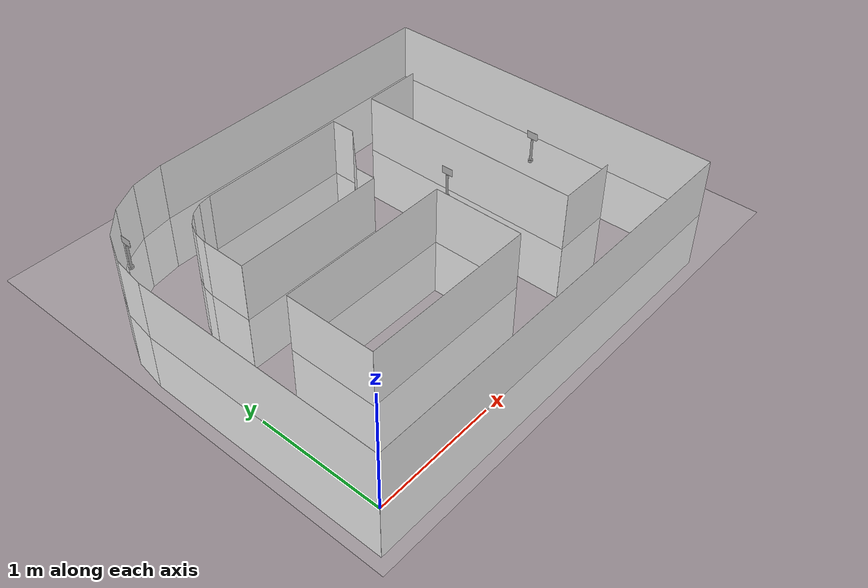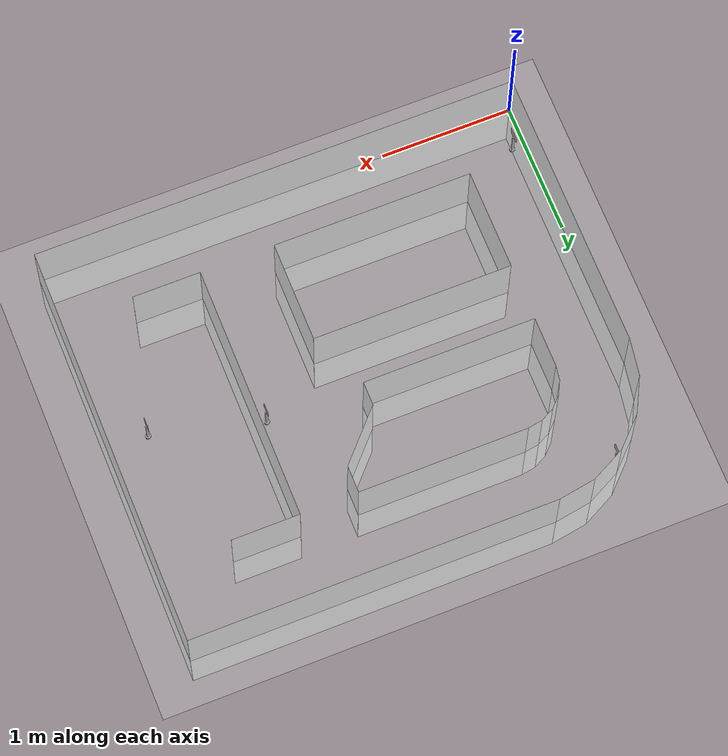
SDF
<sdf version="1.6">
 <world name="default">
  <light name="sun" type="directional">
   <pose>0 0 10 0 -0 0</pose>
   <diffuse>0.8 0.8 0.8 1</diffuse>
   <specular>0.1 0.1 0.1 1</specular>
   <attenuation>
    <range>1000</range>
    <constant>0.9</constant>
    <linear>0.01</linear>
    <quadratic>0.001</quadratic>
   </attenuation>
   <direction>-0.5 0.5 -1</direction>
  </light>
  <model name="ground_plane">
   <static>1</static>
   <link name="link">
    <collision name="collision">
     <geometry><plane><normal>0 0 1</normal><size>100 100</size></plane></geometry>
     <surface><friction><ode><mu>100</mu><mu2>50</mu2></ode></friction></surface>
    </collision>
    <visual name="visual">
     <cast_shadows>0</cast_shadows>
     <geometry><plane><normal>0 0 1</normal><size>100 100</size></plane></geometry>
     <material>
      <script><uri>file://media/materials/scripts/gazebo.material</uri><name>Gazebo/Grey</name></script>
     </material>
    </visual>
   </link>
  </model>
  <model name="wall_0">
   <static>1</static>
   <link name="link">
    <collision name="collision"><geometry><box><size>2.13360426721 0.001 1</size></box></geometry></collision>
    <visual name="visual">
     <geometry><box><size>2.13360426721 0.001 1</size></box></geometry>
     <material>
      <script><name>Gazebo/White</name><uri>file://media/materials/scripts/gazebo.material</uri></script>
     </material>
    </visual>
   </link>
   <pose>0.0 1.0668021336 0 0 0 1.57079632679</pose>
  </model>
  <model name="wall_1">
   <static>1</static>
   <link name="link">
    <collision name="collision"><geometry><box><size>0.286087921841 0.001 1</size></box></geometry></collision>
    <visual name="visual">
     <geometry><box><size>0.286087921841 0.001 1</size></box></geometry>
     <material>
      <script><name>Gazebo/White</name><uri>file://media/materials/scripts/gazebo.material</uri></script>
     </material>
    </visual>
   </link>
   <pose>0.0223770055039 2.2748871196 0 0 0 1.41371669412</pose>
  </model>
  <model name="wall_2">
   <static>1</static>
   <link name="link">
    <collision name="collision"><geometry><box><size>0.286087921841 0.001 1</size></box></geometry></collision>
    <visual name="visual">
     <geometry><box><size>0.286087921841 0.001 1</size></box></geometry>
     <material>
      <script><name>Gazebo/White</name><uri>file://media/materials/scripts/gazebo.material</uri></script>
     </material>
    </visual>
   </link>
   <pose>0.109694610311 2.54362307442 0 0 0 1.09955742876</pose>
  </model>
  <model name="wall_3">
   <static>1</static>
   <link name="link">
    <collision name="collision"><geometry><box><size>0.286087921841 0.001 1</size></box></geometry></collision>
    <visual name="visual">
     <geometry><box><size>0.286087921841 0.001 1</size></box></geometry>
     <material>
      <script><name>Gazebo/White</name><uri>file://media/materials/scripts/gazebo.material</uri></script>
     </material>
    </visual>
   </link>
   <pose>0.275782564389 2.77222353162 0 0 0 0.785398163397</pose>
  </model>
  <model name="wall_4">
   <static>1</static>
   <link name="link">
    <collision name="collision"><geometry><box><size>0.286087921841 0.001 1</size></box></geometry></collision>
    <visual name="visual">
     <geometry><box><size>0.286087921841 0.001 1</size></box></geometry>
     <material>
      <script><name>Gazebo/White</name><uri>file://media/materials/scripts/gazebo.material</uri></script>
     </material>
    </visual>
   </link>
   <pose>0.50438302159 2.9383114857 0 0 0 0.471238898038</pose>
  </model>
  <model name="wall_5">
   <static>1</static>
   <link name="link">
    <collision name="collision"><geometry><box><size>0.286087921841 0.001 1</size></box></geometry></collision>
    <visual name="visual">
     <geometry><box><size>0.286087921841 0.001 1</size></box></geometry>
     <material>
      <script><name>Gazebo/White</name><uri>file://media/materials/scripts/gazebo.material</uri></script>
     </material>
    </visual>
   </link>
   <pose>0.77311897641 3.02562909051 0 0 0 0.157079632679</pose>
  </model>
  <model name="wall_6">
   <static>1</static>
   <link name="link">
    <collision name="collision"><geometry><box><size>2.74320548641 0.001 1</size></box></geometry></collision>
    <visual name="visual">
     <geometry><box><size>2.74320548641 0.001 1</size></box></geometry>
     <material>
      <script><name>Gazebo/White</name><uri>file://media/materials/scripts/gazebo.material</uri></script>
     </material>
    </visual>
   </link>
   <pose>2.28600457201 3.04800609601 0 0 0 0.0</pose>
  </model>
  <model name="wall_7">
   <static>1</static>
   <link name="link">
    <collision name="collision"><geometry><box><size>3.04800609601 0.001 1</size></box></geometry></collision>
    <visual name="visual">
     <geometry><box><size>3.04800609601 0.001 1</size></box></geometry>
     <material>
      <script><name>Gazebo/White</name><uri>file://media/materials/scripts/gazebo.material</uri></script>
     </material>
    </visual>
   </link>
   <pose>3.65760731521 1.52400304801 0 0 0 -1.57079632679</pose>
  </model>
  <model name="wall_8">
   <static>1</static>
   <link name="link">
    <collision name="collision"><geometry><box><size>3.65760731521 0.001 1</size></box></geometry></collision>
    <visual name="visual">
     <geometry><box><size>3.65760731521 0.001 1</size></box></geometry>
     <material>
      <script><name>Gazebo/White</name><uri>file://media/materials/scripts/gazebo.material</uri></script>
     </material>
    </visual>
   </link>
   <pose>1.82880365761 0.0 0 0 0 3.14159265359</pose>
  </model>
  <model name="wall_9">
   <static>1</static>
   <link name="link">
    <collision name="collision"><geometry><box><size>0.762001524003 0.001 1</size></box></geometry></collision>
    <visual name="visual">
     <geometry><box><size>0.762001524003 0.001 1</size></box></geometry>
     <material>
      <script><name>Gazebo/White</name><uri>file://media/materials/scripts/gazebo.material</uri></script>
     </material>
    </visual>
   </link>
   <pose>0.558801117602 0.939801879604 0 0 0 1.57079632679</pose>
  </model>
  <model name="wall_10">
   <static>1</static>
   <link name="link">
    <collision name="collision"><geometry><box><size>1.49860299721 0.001 1</size></box></geometry></collision>
    <visual name="visual">
     <geometry><box><size>1.49860299721 0.001 1</size></box></geometry>
     <material>
      <script><name>Gazebo/White</name><uri>file://media/materials/scripts/gazebo.material</uri></script>
     </material>
    </visual>
   </link>
   <pose>1.30810261621 1.32080264161 0 0 0 0.0</pose>
  </model>
  <model name="wall_11">
   <static>1</static>
   <link name="link">
    <collision name="collision"><geometry><box><size>0.762001524003 0.001 1</size></box></geometry></collision>
    <visual name="visual">
     <geometry><box><size>0.762001524003 0.001 1</size></box></geometry>
     <material>
      <script><name>Gazebo/White</name><uri>file://media/materials/scripts/gazebo.material</uri></script>
     </material>
    </visual>
   </link>
   <pose>2.05740411481 0.939801879604 0 0 0 -1.57079632679</pose>
  </model>
  <model name="wall_12">
   <static>1</static>
   <link name="link">
    <collision name="collision"><geometry><box><size>1.49860299721 0.001 1</size></box></geometry></collision>
    <visual name="visual">
     <geometry><box><size>1.49860299721 0.001 1</size></box></geometry>
     <material>
      <script><name>Gazebo/White</name><uri>file://media/materials/scripts/gazebo.material</uri></script>
     </material>
    </visual>
   </link>
   <pose>1.30810261621 0.558801117602 0 0 0 3.14159265359</pose>
  </model>
  <model name="wall_13">
   <static>1</static>
   <link name="link">
    <collision name="collision"><geometry><box><size>0.381000762002 0.001 1</size></box></geometry></collision>
    <visual name="visual">
     <geometry><box><size>0.381000762002 0.001 1</size></box></geometry>
     <material>
      <script><name>Gazebo/White</name><uri>file://media/materials/scripts/gazebo.material</uri></script>
     </material>
    </visual>
   </link>
   <pose>0.558801117602 1.94310388621 0 0 0 1.57079632679</pose>
  </model>
  <model name="wall_14">
   <static>1</static>
   <link name="link">
    <collision name="collision"><geometry><box><size>0.111256414049 0.001 1</size></box></geometry></collision>
    <visual name="visual">
     <geometry><box><size>0.111256414049 0.001 1</size></box></geometry>
     <material>
      <script><name>Gazebo/White</name><uri>file://media/materials/scripts/gazebo.material</uri></script>
     </material>
    </visual>
   </link>
   <pose>0.567503286409 2.1885475987 0 0 0 1.41371669412</pose>
  </model>
  <model name="wall_15">
   <static>1</static>
   <link name="link">
    <collision name="collision"><geometry><box><size>0.111256414049 0.001 1</size></box></geometry></collision>
    <visual name="visual">
     <geometry><box><size>0.111256414049 0.001 1</size></box></geometry>
     <material>
      <script><name>Gazebo/White</name><uri>file://media/materials/scripts/gazebo.material</uri></script>
     </material>
    </visual>
   </link>
   <pose>0.601460132723 2.29305602557 0 0 0 1.09955742876</pose>
  </model>
  <model name="wall_16">
   <static>1</static>
   <link name="link">
    <collision name="collision"><geometry><box><size>0.111256414049 0.001 1</size></box></geometry></collision>
    <visual name="visual">
     <geometry><box><size>0.111256414049 0.001 1</size></box></geometry>
     <material>
      <script><name>Gazebo/White</name><uri>file://media/materials/scripts/gazebo.material</uri></script>
     </material>
    </visual>
   </link>
   <pose>0.666049892642 2.38195620337 0 0 0 0.785398163397</pose>
  </model>
  <model name="wall_17">
   <static>1</static>
   <link name="link">
    <collision name="collision"><geometry><box><size>0.111256414049 0.001 1</size></box></geometry></collision>
    <visual name="visual">
     <geometry><box><size>0.111256414049 0.001 1</size></box></geometry>
     <material>
      <script><name>Gazebo/White</name><uri>file://media/materials/scripts/gazebo.material</uri></script>
     </material>
    </visual>
   </link>
   <pose>0.754950070443 2.44654596329 0 0 0 0.471238898038</pose>
  </model>
  <model name="wall_18">
   <static>1</static>
   <link name="link">
    <collision name="collision"><geometry><box><size>0.111256414049 0.001 1</size></box></geometry></collision>
    <visual name="visual">
     <geometry><box><size>0.111256414049 0.001 1</size></box></geometry>
     <material>
      <script><name>Gazebo/White</name><uri>file://media/materials/scripts/gazebo.material</uri></script>
     </material>
    </visual>
   </link>
   <pose>0.859458497317 2.4805028096 0 0 0 0.157079632679</pose>
  </model>
  <model name="wall_19">
   <static>1</static>
   <link name="link">
    <collision name="collision"><geometry><box><size>1.27000254001 0.001 1</size></box></geometry></collision>
    <visual name="visual">
     <geometry><box><size>1.27000254001 0.001 1</size></box></geometry>
     <material>
      <script><name>Gazebo/White</name><uri>file://media/materials/scripts/gazebo.material</uri></script>
     </material>
    </visual>
   </link>
   <pose>1.54940309881 2.48920497841 0 0 0 0.0</pose>
  </model>
  <model name="wall_20">
   <static>1</static>
   <link name="link">
    <collision name="collision"><geometry><box><size>0.203200406401 0.001 1</size></box></geometry></collision>
    <visual name="visual">
     <geometry><box><size>0.203200406401 0.001 1</size></box></geometry>
     <material>
      <script><name>Gazebo/White</name><uri>file://media/materials/scripts/gazebo.material</uri></script>
     </material>
    </visual>
   </link>
   <pose>2.18440436881 2.38760477521 0 0 0 -1.57079632679</pose>
  </model>
  <model name="wall_21">
   <static>1</static>
   <link name="link">
    <collision name="collision"><geometry><box><size>0.485267289168 0.001 1</size></box></geometry></collision>
    <visual name="visual">
     <geometry><box><size>0.485267289168 0.001 1</size></box></geometry>
     <material>
      <script><name>Gazebo/White</name><uri>file://media/materials/scripts/gazebo.material</uri></script>
     </material>
    </visual>
   </link>
   <pose>2.01930403861 2.10820421641 0 0 0 -2.31917437432</pose>
  </model>
  <model name="wall_22">
   <static>1</static>
   <link name="link">
    <collision name="collision"><geometry><box><size>0.177800355601 0.001 1</size></box></geometry></collision>
    <visual name="visual">
     <geometry><box><size>0.177800355601 0.001 1</size></box></geometry>
     <material>
      <script><name>Gazebo/White</name><uri>file://media/materials/scripts/gazebo.material</uri></script>
     </material>
    </visual>
   </link>
   <pose>1.85420370841 1.84150368301 0 0 0 -1.57079632679</pose>
  </model>
  <model name="wall_23">
   <static>1</static>
   <link name="link">
    <collision name="collision"><geometry><box><size>1.29540259081 0.001 1</size></box></geometry></collision>
    <visual name="visual">
     <geometry><box><size>1.29540259081 0.001 1</size></box></geometry>
     <material>
      <script><name>Gazebo/White</name><uri>file://media/materials/scripts/gazebo.material</uri></script>
     </material>
    </visual>
   </link>
   <pose>1.206502413 1.75260350521 0 0 0 3.14159265359</pose>
  </model>
  <model name="wall_24">
   <static>1</static>
   <link name="link">
    <collision name="collision"><geometry><box><size>0.508001016002 0.001 1</size></box></geometry></collision>
    <visual name="visual">
     <geometry><box><size>0.508001016002 0.001 1</size></box></geometry>
     <material>
      <script><name>Gazebo/White</name><uri>file://media/materials/scripts/gazebo.material</uri></script>
     </material>
    </visual>
   </link>
   <pose>2.87020574041 2.48920497841 0 0 0 0.0</pose>
  </model>
  <model name="wall_25">
   <static>1</static>
   <link name="link">
    <collision name="collision"><geometry><box><size>0.508001016002 0.001 1</size></box></geometry></collision>
    <visual name="visual">
     <geometry><box><size>0.508001016002 0.001 1</size></box></geometry>
     <material>
      <script><name>Gazebo/White</name><uri>file://media/materials/scripts/gazebo.material</uri></script>
     </material>
    </visual>
   </link>
   <pose>2.87020574041 0.558801117602 0 0 0 3.14159265359</pose>
  </model>
  <model name="wall_26">
   <static>1</static>
   <link name="link">
    <collision name="collision"><geometry><box><size>1.93040386081 0.001 1</size></box></geometry></collision>
    <visual name="visual">
     <geometry><box><size>1.93040386081 0.001 1</size></box></geometry>
     <material>
      <script><name>Gazebo/White</name><uri>file://media/materials/scripts/gazebo.material</uri></script>
     </material>
    </visual>
   </link>
   <pose>2.61620523241 1.52400304801 0 0 0 1.57079632679</pose>
  </model>
  <model name="flag">
   <link name="plate">
    <pose>0 0 0.2425 0 0 0</pose>
    <collision name="collision">
     <geometry><box><size>0.001 0.1 0.065</size></box></geometry>
     <surface><friction><ode><mu>1</mu><mu2>1</mu2></ode></friction></surface>
    </collision>
    <visual name="visual"><geometry><box><size>0.001 0.1 0.065</size></box></geometry></visual>
    <inertial>
     <inertia><ixx>0.1</ixx><ixy>0</ixy><ixz>0</ixz><iyy>0.1</iyy><iyz>0</iyz><izz>0.1</izz></inertia>
     <mass>0.1</mass>
    </inertial>
   </link>
   <link name="pole">
    <pose>0 0 0.11 0 0 0</pose>
    <collision name="collision">
     <geometry><cylinder><radius>0.01</radius><length>0.2</length></cylinder></geometry>
     <surface>
      <friction><torsional><coefficient>1</coefficient></torsional><ode><mu>1</mu><mu2>1</mu2></ode></friction>
     </surface>
    </collision>
    <visual name="visual">
     <geometry><cylinder><radius>0.01</radius><length>0.2</length></cylinder></geometry>
    </visual>
    <inertial>
     <inertia><ixx>1</ixx><ixy>0</ixy><ixz>0</ixz><iyy>1</iyy><iyz>0</iyz><izz>1</izz></inertia>
     <mass>1</mass>
    </inertial>
   </link>
   <link name="base">
    <collision name="collision">
     <geometry><cylinder><radius>0.02</radius><length>0.02</length></cylinder></geometry>
     <surface><friction><ode><mu>0.01</mu><mu2>0.01</mu2></ode></friction></surface>
    </collision>
    <visual name="visual">
     <geometry><cylinder><radius>0.02</radius><length>0.02</length></cylinder></geometry>
    </visual>
    <inertial>
     <inertia><ixx>0.1</ixx><ixy>0</ixy><ixz>0</ixz><iyy>0.1</iyy><iyz>0</iyz><izz>0.1</izz></inertia>
     <mass>0.1</mass>
    </inertial>
    <gravity>0</gravity>
   </link>
   <joint name="base_pole" type="fixed">
    <parent>base</parent>
    <child>pole</child>
    <pose>0 0 0.02 0 0 0</pose>
   </joint>
   <joint name="pole_plate" type="fixed">
    <parent>pole</parent>
    <child>plate</child>
    <pose>0 0 0.1 0 0 0</pose>
   </joint>
   <pose>3.35 1.4 0.01 0.0 0.0 3.14159</pose>
  </model>
  <model name="Broccoli">
   <link name="plate">
    <pose>0 0 0.2425 0 0 0</pose>
    <collision name="collision">
     <geometry><box><size>0.001 0.1 0.065</size></box></geometry>
     <surface><friction><ode><mu>1</mu><mu2>1</mu2></ode></friction></surface>
    </collision>
    <visual name="visual">
     <geometry><box><size>0.001 0.1 0.065</size></box></geometry>
     <material>
      <script>
       <uri>model://broccoli/materials/scripts</uri>
       <uri>model://broccoli/materials/textures</uri>
       <name>Broccoli/Diffuse</name>
      </script>
     </material>
    </visual>
    <inertial>
     <inertia><ixx>0.1</ixx><ixy>0</ixy><ixz>0</ixz><iyy>0.1</iyy><iyz>0</iyz><izz>0.1</izz></inertia>
     <mass>0.1</mass>
    </inertial>
   </link>
   <link name="pole">
    <pose>0 0 0.11 0 0 0</pose>
    <collision name="collision">
     <geometry><cylinder><radius>0.01</radius><length>0.2</length></cylinder></geometry>
     <surface>
      <friction><torsional><coefficient>1</coefficient></torsional><ode><mu>1</mu><mu2>1</mu2></ode></friction>
     </surface>
    </collision>
    <visual name="visual">
     <geometry><cylinder><radius>0.01</radius><length>0.2</length></cylinder></geometry>
    </visual>
    <inertial>
     <inertia><ixx>1</ixx><ixy>0</ixy><ixz>0</ixz><iyy>1</iyy><iyz>0</iyz><izz>1</izz></inertia>
     <mass>1</mass>
    </inertial>
   </link>
   <link name="base">
    <collision name="collision">
     <geometry><cylinder><radius>0.02</radius><length>0.02</length></cylinder></geometry>
     <surface><friction><ode><mu>0.01</mu><mu2>0.01</mu2></ode></friction></surface>
    </collision>
    <visual name="visual">
     <geometry><cylinder><radius>0.02</radius><length>0.02</length></cylinder></geometry>
    </visual>
    <inertial>
     <inertia><ixx>0.1</ixx><ixy>0</ixy><ixz>0</ixz><iyy>0.1</iyy><iyz>0</iyz><izz>0.1</izz></inertia>
     <mass>0.1</mass>
    </inertial>
    <gravity>0</gravity>
   </link>
   <joint name="base_pole" type="fixed">
    <parent>base</parent>
    <child>pole</child>
    <pose>0 0 0.02 0 0 0</pose>
   </joint>
   <joint name="pole_plate" type="fixed">
    <parent>pole</parent>
    <child>plate</child>
    <pose>0 0 0.1 0 0 0</pose>
   </joint>
   <pose>0.3575 2.80 0.01 0.0 0.0 3.14159</pose>
  </model>
  <model name="Donut">
   <link name="plate">
    <pose>0 0 0.2425 0 0 0</pose>
    <collision name="collision">
     <geometry><box><size>0.001 0.1 0.065</size></box></geometry>
     <surface><friction><ode><mu>1</mu><mu2>1</mu2></ode></friction></surface>
    </collision>
    <visual name="visual">
     <geometry><box><size>0.001 0.1 0.065</size></box></geometry>
     <material>
      <script>
       <uri>model://donut/materials/scripts</uri>
       <uri>model://donut/materials/textures</uri>
       <name>Donut/Diffuse</name>
      </script>
     </material>
    </visual>
    <inertial>
     <inertia><ixx>0.1</ixx><ixy>0</ixy><ixz>0</ixz><iyy>0.1</iyy><iyz>0</iyz><izz>0.1</izz></inertia>
     <mass>0.1</mass>
    </inertial>
   </link>
   <link name="pole">
    <pose>0 0 0.11 0 0 0</pose>
    <collision name="collision">
     <geometry><cylinder><radius>0.01</radius><length>0.2</length></cylinder></geometry>
     <surface>
      <friction><torsional><coefficient>1</coefficient></torsional><ode><mu>1</mu><mu2>1</mu2></ode></friction>
     </surface>
    </collision>
    <visual name="visual">
     <geometry><cylinder><radius>0.01</radius><length>0.2</length></cylinder></geometry>
    </visual>
    <inertial>
     <inertia><ixx>1</ixx><ixy>0</ixy><ixz>0</ixz><iyy>1</iyy><iyz>0</iyz><izz>1</izz></inertia>
     <mass>1</mass>
    </inertial>
   </link>
   <link name="base">
    <collision name="collision">
     <geometry><cylinder><radius>0.02</radius><length>0.02</length></cylinder></geometry>
     <surface><friction><ode><mu>0.01</mu><mu2>0.01</mu2></ode></friction></surface>
    </collision>
    <visual name="visual">
     <geometry><cylinder><radius>0.02</radius><length>0.02</length></cylinder></geometry>
    </visual>
    <inertial>
     <inertia><ixx>0.1</ixx><ixy>0</ixy><ixz>0</ixz><iyy>0.1</iyy><iyz>0</iyz><izz>0.1</izz></inertia>
     <mass>0.1</mass>
    </inertial>
    <gravity>0</gravity>
   </link>
   <joint name="base_pole" type="fixed">
    <parent>base</parent>
    <child>pole</child>
    <pose>0 0 0.02 0 0 0</pose>
   </joint>
   <joint name="pole_plate" type="fixed">
    <parent>pole</parent>
    <child>plate</child>
    <pose>0 0 0.1 0 0 0</pose>
   </joint>
   <pose>2.53 1.61 0.01 0.0 0.0 3.14159</pose>
  </model>
  <model name="Banana">
   <link name="plate">
    <pose>0 0 0.2425 0 0 0</pose>
    <collision name="collision">
     <geometry><box><size>0.001 0.1 0.065</size></box></geometry>
     <surface><friction><ode><mu>1</mu><mu2>1</mu2></ode></friction></surface>
    </collision>
    <visual name="visual">
     <geometry><box><size>0.001 0.1 0.065</size></box></geometry>
     <material>
      <script>
       <uri>model://banana/materials/scripts</uri>
       <uri>model://banana/materials/textures</uri>
       <name>Banana/Diffuse</name>
      </script>
     </material>
    </visual>
    <inertial>
     <inertia><ixx>0.1</ixx><ixy>0</ixy><ixz>0</ixz><iyy>0.1</iyy><iyz>0</iyz><izz>0.1</izz></inertia>
     <mass>0.1</mass>
    </inertial>
   </link>
   <link name="pole">
    <pose>0 0 0.11 0 0 0</pose>
    <collision name="collision">
     <geometry><cylinder><radius>0.01</radius><length>0.2</length></cylinder></geometry>
     <surface>
      <friction><torsional><coefficient>1</coefficient></torsional><ode><mu>1</mu><mu2>1</mu2></ode></friction>
     </surface>
    </collision>
    <visual name="visual">
     <geometry><cylinder><radius>0.01</radius><length>0.2</length></cylinder></geometry>
    </visual>
    <inertial>
     <inertia><ixx>1</ixx><ixy>0</ixy><ixz>0</ixz><iyy>1</iyy><iyz>0</iyz><izz>1</izz></inertia>
     <mass>1</mass>
    </inertial>
   </link>
   <link name="base">
    <collision name="collision">
     <geometry><cylinder><radius>0.02</radius><length>0.02</length></cylinder></geometry>
     <surface><friction><ode><mu>0.01</mu><mu2>0.01</mu2></ode></friction></surface>
    </collision>
    <visual name="visual">
     <geometry><cylinder><radius>0.02</radius><length>0.02</length></cylinder></geometry>
    </visual>
    <inertial>
     <inertia><ixx>0.1</ixx><ixy>0</ixy><ixz>0</ixz><iyy>0.1</iyy><iyz>0</iyz><izz>0.1</izz></inertia>
     <mass>0.1</mass>
    </inertial>
    <gravity>0</gravity>
   </link>
   <joint name="base_pole" type="fixed">
    <parent>base</parent>
    <child>pole</child>
    <pose>0 0 0.02 0 0 0</pose>
   </joint>
   <joint name="pole_plate" type="fixed">
    <parent>pole</parent>
    <child>plate</child>
    <pose>0 0 0.1 0 0 0</pose>
   </joint>
   <pose>0.1 0.3 0.01 0.0 0.0 3.14159</pose>
  </model>
  <gravity>0 0 -9.8</gravity>
  <magnetic_field>6e-06 2.3e-05 -4.2e-05</magnetic_field>
  <atmosphere type="adiabatic"/>
  <physics name="default_physics" default="0" type="ode">
   <max_step_size>0.001</max_step_size>
   <real_time_factor>1</real_time_factor>
   <real_time_update_rate>1000</real_time_update_rate>
  </physics>
  <scene><ambient>0.4 0.4 0.4 1</ambient><background>0.7 0.7 0.7 1</background><shadows>1</shadows></scene>
  <spherical_coordinates>
   <surface_model>EARTH_WGS84</surface_model>
   <latitude_deg>0</latitude_deg>
   <longitude_deg>0</longitude_deg>
   <elevation>0</elevation>
   <heading_deg>0</heading_deg>
  </spherical_coordinates>
 </world>
</sdf>
